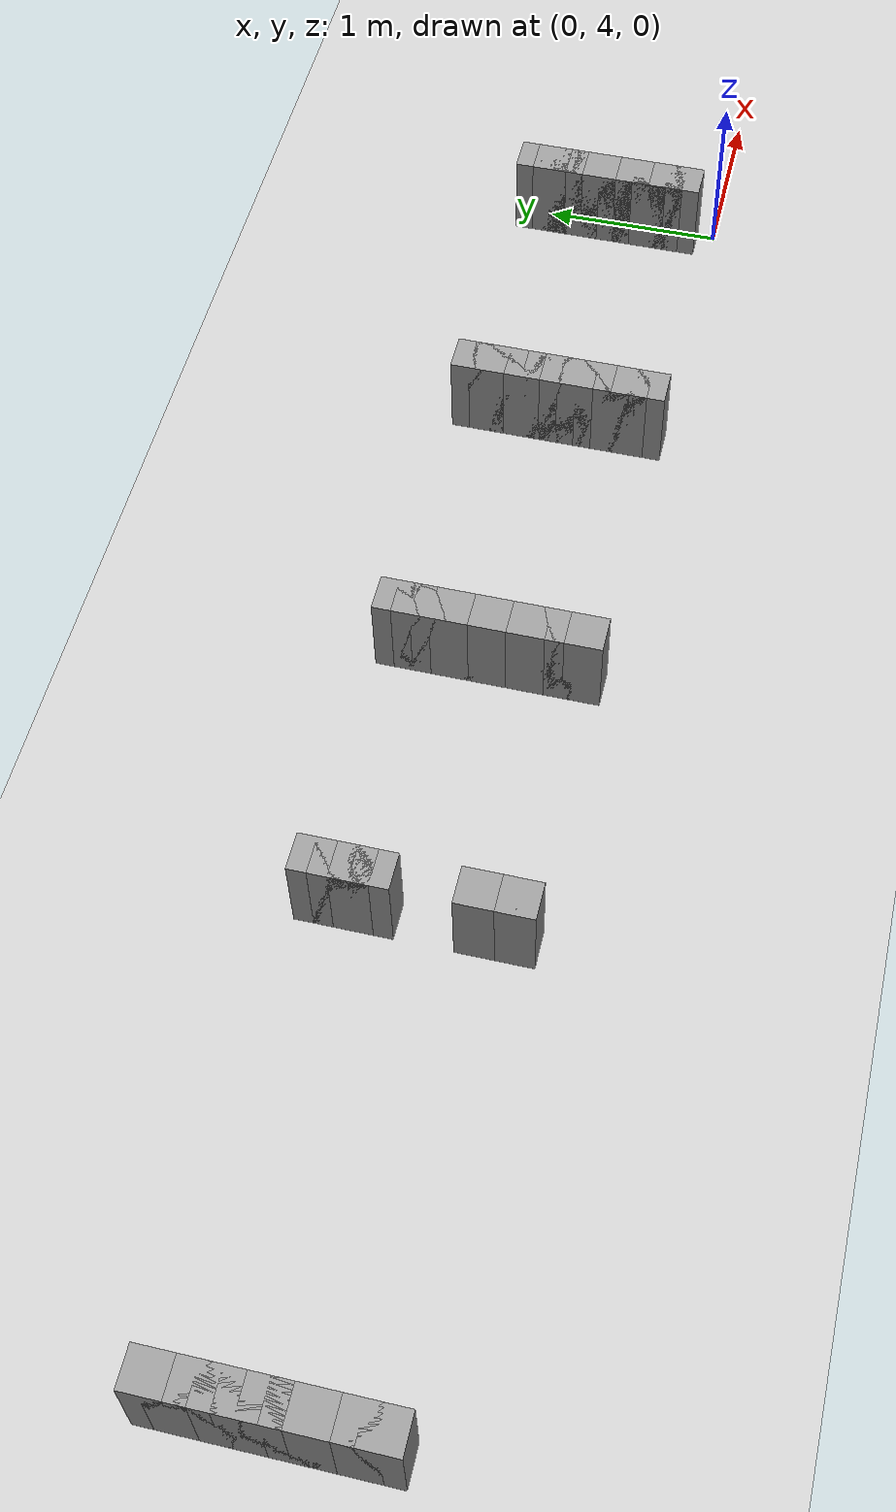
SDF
<sdf version="1.6">
 <world name="GridMap">
  <include><uri>model://sun</uri></include>
  <include><uri>model://ground_plane</uri></include>
  <model name="GridMap">
   <link name="Wall_(17.0,41.0)">
    <collision name="Wall_(17.0,41.0)_Collision">
     <geometry><box><size>0.2 0.2 0.5</size></box></geometry>
     <pose>-1.7000000000000002 4.1000000000000005 0.25 0 -0 0</pose>
    </collision>
    <inertial>
     <mass>0.5</mass>
     <pose>0 0.01 0 0 0 0</pose>
     <inertia><ixx>0.004</ixx><ixy>0.001</ixy><ixz>0</ixz><iyy>0.006</iyy><iyz>0</iyz><izz>0.007</izz></inertia>
    </inertial>
    <visual name="Wall_(17.0,41.0)_Visual">
     <geometry><box><size>0.2 0.2 0.5</size></box></geometry>
     <pose>-1.7000000000000002 4.1000000000000005 0.25 0 -0 0</pose>
     <material>
      <script><uri>file://media/materials/scripts/gazebo.material</uri><name>Gazebo/Grey</name></script>
      <ambient>1 1 1 1</ambient>
     </material>
     <meta><layer>0</layer></meta>
    </visual>
   </link>
   <link name="Wall_(34.0,41.0)">
    <collision name="Wall_(34.0,41.0)_Collision">
     <geometry><box><size>0.2 0.2 0.5</size></box></geometry>
     <pose>-3.4000000000000004 4.1000000000000005 0.25 0 -0 0</pose>
    </collision>
    <inertial>
     <mass>0.5</mass>
     <pose>0 0.01 0 0 0 0</pose>
     <inertia><ixx>0.004</ixx><ixy>0.001</ixy><ixz>0</ixz><iyy>0.006</iyy><iyz>0</iyz><izz>0.007</izz></inertia>
    </inertial>
    <visual name="Wall_(34.0,41.0)_Visual">
     <geometry><box><size>0.2 0.2 0.5</size></box></geometry>
     <pose>-3.4000000000000004 4.1000000000000005 0.25 0 -0 0</pose>
     <material>
      <script><uri>file://media/materials/scripts/gazebo.material</uri><name>Gazebo/Grey</name></script>
      <ambient>1 1 1 1</ambient>
     </material>
     <meta><layer>0</layer></meta>
    </visual>
   </link>
   <link name="Wall_(49.5,41.0)">
    <collision name="Wall_(49.5,41.0)_Collision">
     <geometry><box><size>0.2 0.2 0.5</size></box></geometry>
     <pose>-4.95 4.1000000000000005 0.25 0 -0 0</pose>
    </collision>
    <inertial>
     <mass>0.5</mass>
     <pose>0 0.01 0 0 0 0</pose>
     <inertia><ixx>0.004</ixx><ixy>0.001</ixy><ixz>0</ixz><iyy>0.006</iyy><iyz>0</iyz><izz>0.007</izz></inertia>
    </inertial>
    <visual name="Wall_(49.5,41.0)_Visual">
     <geometry><box><size>0.2 0.2 0.5</size></box></geometry>
     <pose>-4.95 4.1000000000000005 0.25 0 -0 0</pose>
     <material>
      <script><uri>file://media/materials/scripts/gazebo.material</uri><name>Gazebo/Grey</name></script>
      <ambient>1 1 1 1</ambient>
     </material>
     <meta><layer>0</layer></meta>
    </visual>
   </link>
   <link name="Wall_(74.0,41.0)">
    <collision name="Wall_(74.0,41.0)_Collision">
     <geometry><box><size>0.2 0.2 0.5</size></box></geometry>
     <pose>-7.4 4.1000000000000005 0.25 0 -0 0</pose>
    </collision>
    <inertial>
     <mass>0.5</mass>
     <pose>0 0.01 0 0 0 0</pose>
     <inertia><ixx>0.004</ixx><ixy>0.001</ixy><ixz>0</ixz><iyy>0.006</iyy><iyz>0</iyz><izz>0.007</izz></inertia>
    </inertial>
    <visual name="Wall_(74.0,41.0)_Visual">
     <geometry><box><size>0.2 0.2 0.5</size></box></geometry>
     <pose>-7.4 4.1000000000000005 0.25 0 -0 0</pose>
     <material>
      <script><uri>file://media/materials/scripts/gazebo.material</uri><name>Gazebo/Grey</name></script>
      <ambient>1 1 1 1</ambient>
     </material>
     <meta><layer>0</layer></meta>
    </visual>
   </link>
   <link name="Wall_(0.5,42.0)">
    <collision name="Wall_(0.5,42.0)_Collision">
     <geometry><box><size>0.2 0.2 0.5</size></box></geometry>
     <pose>-0.05 4.2 0.25 0 -0 0</pose>
    </collision>
    <inertial>
     <mass>0.5</mass>
     <pose>0 0.01 0 0 0 0</pose>
     <inertia><ixx>0.004</ixx><ixy>0.001</ixy><ixz>0</ixz><iyy>0.006</iyy><iyz>0</iyz><izz>0.007</izz></inertia>
    </inertial>
    <visual name="Wall_(0.5,42.0)_Visual">
     <geometry><box><size>0.2 0.2 0.5</size></box></geometry>
     <pose>-0.05 4.2 0.25 0 -0 0</pose>
     <material>
      <script><uri>file://media/materials/scripts/gazebo.material</uri><name>Gazebo/Grey</name></script>
      <ambient>1 1 1 1</ambient>
     </material>
     <meta><layer>0</layer></meta>
    </visual>
   </link>
   <link name="Wall_(17.0,42.0)">
    <collision name="Wall_(17.0,42.0)_Collision">
     <geometry><box><size>0.2 0.2 0.5</size></box></geometry>
     <pose>-1.7000000000000002 4.2 0.25 0 -0 0</pose>
    </collision>
    <inertial>
     <mass>0.5</mass>
     <pose>0 0.01 0 0 0 0</pose>
     <inertia><ixx>0.004</ixx><ixy>0.001</ixy><ixz>0</ixz><iyy>0.006</iyy><iyz>0</iyz><izz>0.007</izz></inertia>
    </inertial>
    <visual name="Wall_(17.0,42.0)_Visual">
     <geometry><box><size>0.2 0.2 0.5</size></box></geometry>
     <pose>-1.7000000000000002 4.2 0.25 0 -0 0</pose>
     <material>
      <script><uri>file://media/materials/scripts/gazebo.material</uri><name>Gazebo/Grey</name></script>
      <ambient>1 1 1 1</ambient>
     </material>
     <meta><layer>0</layer></meta>
    </visual>
   </link>
   <link name="Wall_(34.0,42.0)">
    <collision name="Wall_(34.0,42.0)_Collision">
     <geometry><box><size>0.2 0.2 0.5</size></box></geometry>
     <pose>-3.4000000000000004 4.2 0.25 0 -0 0</pose>
    </collision>
    <inertial>
     <mass>0.5</mass>
     <pose>0 0.01 0 0 0 0</pose>
     <inertia><ixx>0.004</ixx><ixy>0.001</ixy><ixz>0</ixz><iyy>0.006</iyy><iyz>0</iyz><izz>0.007</izz></inertia>
    </inertial>
    <visual name="Wall_(34.0,42.0)_Visual">
     <geometry><box><size>0.2 0.2 0.5</size></box></geometry>
     <pose>-3.4000000000000004 4.2 0.25 0 -0 0</pose>
     <material>
      <script><uri>file://media/materials/scripts/gazebo.material</uri><name>Gazebo/Grey</name></script>
      <ambient>1 1 1 1</ambient>
     </material>
     <meta><layer>0</layer></meta>
    </visual>
   </link>
   <link name="Wall_(49.5,42.0)">
    <collision name="Wall_(49.5,42.0)_Collision">
     <geometry><box><size>0.2 0.2 0.5</size></box></geometry>
     <pose>-4.95 4.2 0.25 0 -0 0</pose>
    </collision>
    <inertial>
     <mass>0.5</mass>
     <pose>0 0.01 0 0 0 0</pose>
     <inertia><ixx>0.004</ixx><ixy>0.001</ixy><ixz>0</ixz><iyy>0.006</iyy><iyz>0</iyz><izz>0.007</izz></inertia>
    </inertial>
    <visual name="Wall_(49.5,42.0)_Visual">
     <geometry><box><size>0.2 0.2 0.5</size></box></geometry>
     <pose>-4.95 4.2 0.25 0 -0 0</pose>
     <material>
      <script><uri>file://media/materials/scripts/gazebo.material</uri><name>Gazebo/Grey</name></script>
      <ambient>1 1 1 1</ambient>
     </material>
     <meta><layer>0</layer></meta>
    </visual>
   </link>
   <link name="Wall_(74.0,42.0)">
    <collision name="Wall_(74.0,42.0)_Collision">
     <geometry><box><size>0.2 0.2 0.5</size></box></geometry>
     <pose>-7.4 4.2 0.25 0 -0 0</pose>
    </collision>
    <inertial>
     <mass>0.5</mass>
     <pose>0 0.01 0 0 0 0</pose>
     <inertia><ixx>0.004</ixx><ixy>0.001</ixy><ixz>0</ixz><iyy>0.006</iyy><iyz>0</iyz><izz>0.007</izz></inertia>
    </inertial>
    <visual name="Wall_(74.0,42.0)_Visual">
     <geometry><box><size>0.2 0.2 0.5</size></box></geometry>
     <pose>-7.4 4.2 0.25 0 -0 0</pose>
     <material>
      <script><uri>file://media/materials/scripts/gazebo.material</uri><name>Gazebo/Grey</name></script>
      <ambient>1 1 1 1</ambient>
     </material>
     <meta><layer>0</layer></meta>
    </visual>
   </link>
   <link name="Wall_(0.5,43.0)">
    <collision name="Wall_(0.5,43.0)_Collision">
     <geometry><box><size>0.2 0.2 0.5</size></box></geometry>
     <pose>-0.05 4.3 0.25 0 -0 0</pose>
    </collision>
    <inertial>
     <mass>0.5</mass>
     <pose>0 0.01 0 0 0 0</pose>
     <inertia><ixx>0.004</ixx><ixy>0.001</ixy><ixz>0</ixz><iyy>0.006</iyy><iyz>0</iyz><izz>0.007</izz></inertia>
    </inertial>
    <visual name="Wall_(0.5,43.0)_Visual">
     <geometry><box><size>0.2 0.2 0.5</size></box></geometry>
     <pose>-0.05 4.3 0.25 0 -0 0</pose>
     <material>
      <script><uri>file://media/materials/scripts/gazebo.material</uri><name>Gazebo/Grey</name></script>
      <ambient>1 1 1 1</ambient>
     </material>
     <meta><layer>0</layer></meta>
    </visual>
   </link>
   <link name="Wall_(17.0,43.0)">
    <collision name="Wall_(17.0,43.0)_Collision">
     <geometry><box><size>0.2 0.2 0.5</size></box></geometry>
     <pose>-1.7000000000000002 4.3 0.25 0 -0 0</pose>
    </collision>
    <inertial>
     <mass>0.5</mass>
     <pose>0 0.01 0 0 0 0</pose>
     <inertia><ixx>0.004</ixx><ixy>0.001</ixy><ixz>0</ixz><iyy>0.006</iyy><iyz>0</iyz><izz>0.007</izz></inertia>
    </inertial>
    <visual name="Wall_(17.0,43.0)_Visual">
     <geometry><box><size>0.2 0.2 0.5</size></box></geometry>
     <pose>-1.7000000000000002 4.3 0.25 0 -0 0</pose>
     <material>
      <script><uri>file://media/materials/scripts/gazebo.material</uri><name>Gazebo/Grey</name></script>
      <ambient>1 1 1 1</ambient>
     </material>
     <meta><layer>0</layer></meta>
    </visual>
   </link>
   <link name="Wall_(34.0,43.0)">
    <collision name="Wall_(34.0,43.0)_Collision">
     <geometry><box><size>0.2 0.2 0.5</size></box></geometry>
     <pose>-3.4000000000000004 4.3 0.25 0 -0 0</pose>
    </collision>
    <inertial>
     <mass>0.5</mass>
     <pose>0 0.01 0 0 0 0</pose>
     <inertia><ixx>0.004</ixx><ixy>0.001</ixy><ixz>0</ixz><iyy>0.006</iyy><iyz>0</iyz><izz>0.007</izz></inertia>
    </inertial>
    <visual name="Wall_(34.0,43.0)_Visual">
     <geometry><box><size>0.2 0.2 0.5</size></box></geometry>
     <pose>-3.4000000000000004 4.3 0.25 0 -0 0</pose>
     <material>
      <script><uri>file://media/materials/scripts/gazebo.material</uri><name>Gazebo/Grey</name></script>
      <ambient>1 1 1 1</ambient>
     </material>
     <meta><layer>0</layer></meta>
    </visual>
   </link>
   <link name="Wall_(49.5,43.0)">
    <collision name="Wall_(49.5,43.0)_Collision">
     <geometry><box><size>0.2 0.2 0.5</size></box></geometry>
     <pose>-4.95 4.3 0.25 0 -0 0</pose>
    </collision>
    <inertial>
     <mass>0.5</mass>
     <pose>0 0.01 0 0 0 0</pose>
     <inertia><ixx>0.004</ixx><ixy>0.001</ixy><ixz>0</ixz><iyy>0.006</iyy><iyz>0</iyz><izz>0.007</izz></inertia>
    </inertial>
    <visual name="Wall_(49.5,43.0)_Visual">
     <geometry><box><size>0.2 0.2 0.5</size></box></geometry>
     <pose>-4.95 4.3 0.25 0 -0 0</pose>
     <material>
      <script><uri>file://media/materials/scripts/gazebo.material</uri><name>Gazebo/Grey</name></script>
      <ambient>1 1 1 1</ambient>
     </material>
     <meta><layer>0</layer></meta>
    </visual>
   </link>
   <link name="Wall_(74.0,43.0)">
    <collision name="Wall_(74.0,43.0)_Collision">
     <geometry><box><size>0.2 0.2 0.5</size></box></geometry>
     <pose>-7.4 4.3 0.25 0 -0 0</pose>
    </collision>
    <inertial>
     <mass>0.5</mass>
     <pose>0 0.01 0 0 0 0</pose>
     <inertia><ixx>0.004</ixx><ixy>0.001</ixy><ixz>0</ixz><iyy>0.006</iyy><iyz>0</iyz><izz>0.007</izz></inertia>
    </inertial>
    <visual name="Wall_(74.0,43.0)_Visual">
     <geometry><box><size>0.2 0.2 0.5</size></box></geometry>
     <pose>-7.4 4.3 0.25 0 -0 0</pose>
     <material>
      <script><uri>file://media/materials/scripts/gazebo.material</uri><name>Gazebo/Grey</name></script>
      <ambient>1 1 1 1</ambient>
     </material>
     <meta><layer>0</layer></meta>
    </visual>
   </link>
   <link name="Wall_(0.5,44.0)">
    <collision name="Wall_(0.5,44.0)_Collision">
     <geometry><box><size>0.2 0.2 0.5</size></box></geometry>
     <pose>-0.05 4.4 0.25 0 -0 0</pose>
    </collision>
    <inertial>
     <mass>0.5</mass>
     <pose>0 0.01 0 0 0 0</pose>
     <inertia><ixx>0.004</ixx><ixy>0.001</ixy><ixz>0</ixz><iyy>0.006</iyy><iyz>0</iyz><izz>0.007</izz></inertia>
    </inertial>
    <visual name="Wall_(0.5,44.0)_Visual">
     <geometry><box><size>0.2 0.2 0.5</size></box></geometry>
     <pose>-0.05 4.4 0.25 0 -0 0</pose>
     <material>
      <script><uri>file://media/materials/scripts/gazebo.material</uri><name>Gazebo/Grey</name></script>
      <ambient>1 1 1 1</ambient>
     </material>
     <meta><layer>0</layer></meta>
    </visual>
   </link>
   <link name="Wall_(17.0,44.0)">
    <collision name="Wall_(17.0,44.0)_Collision">
     <geometry><box><size>0.2 0.2 0.5</size></box></geometry>
     <pose>-1.7000000000000002 4.4 0.25 0 -0 0</pose>
    </collision>
    <inertial>
     <mass>0.5</mass>
     <pose>0 0.01 0 0 0 0</pose>
     <inertia><ixx>0.004</ixx><ixy>0.001</ixy><ixz>0</ixz><iyy>0.006</iyy><iyz>0</iyz><izz>0.007</izz></inertia>
    </inertial>
    <visual name="Wall_(17.0,44.0)_Visual">
     <geometry><box><size>0.2 0.2 0.5</size></box></geometry>
     <pose>-1.7000000000000002 4.4 0.25 0 -0 0</pose>
     <material>
      <script><uri>file://media/materials/scripts/gazebo.material</uri><name>Gazebo/Grey</name></script>
      <ambient>1 1 1 1</ambient>
     </material>
     <meta><layer>0</layer></meta>
    </visual>
   </link>
   <link name="Wall_(34.0,44.0)">
    <collision name="Wall_(34.0,44.0)_Collision">
     <geometry><box><size>0.2 0.2 0.5</size></box></geometry>
     <pose>-3.4000000000000004 4.4 0.25 0 -0 0</pose>
    </collision>
    <inertial>
     <mass>0.5</mass>
     <pose>0 0.01 0 0 0 0</pose>
     <inertia><ixx>0.004</ixx><ixy>0.001</ixy><ixz>0</ixz><iyy>0.006</iyy><iyz>0</iyz><izz>0.007</izz></inertia>
    </inertial>
    <visual name="Wall_(34.0,44.0)_Visual">
     <geometry><box><size>0.2 0.2 0.5</size></box></geometry>
     <pose>-3.4000000000000004 4.4 0.25 0 -0 0</pose>
     <material>
      <script><uri>file://media/materials/scripts/gazebo.material</uri><name>Gazebo/Grey</name></script>
      <ambient>1 1 1 1</ambient>
     </material>
     <meta><layer>0</layer></meta>
    </visual>
   </link>
   <link name="Wall_(74.0,44.0)">
    <collision name="Wall_(74.0,44.0)_Collision">
     <geometry><box><size>0.2 0.2 0.5</size></box></geometry>
     <pose>-7.4 4.4 0.25 0 -0 0</pose>
    </collision>
    <inertial>
     <mass>0.5</mass>
     <pose>0 0.01 0 0 0 0</pose>
     <inertia><ixx>0.004</ixx><ixy>0.001</ixy><ixz>0</ixz><iyy>0.006</iyy><iyz>0</iyz><izz>0.007</izz></inertia>
    </inertial>
    <visual name="Wall_(74.0,44.0)_Visual">
     <geometry><box><size>0.2 0.2 0.5</size></box></geometry>
     <pose>-7.4 4.4 0.25 0 -0 0</pose>
     <material>
      <script><uri>file://media/materials/scripts/gazebo.material</uri><name>Gazebo/Grey</name></script>
      <ambient>1 1 1 1</ambient>
     </material>
     <meta><layer>0</layer></meta>
    </visual>
   </link>
   <link name="Wall_(0.5,45.0)">
    <collision name="Wall_(0.5,45.0)_Collision">
     <geometry><box><size>0.2 0.2 0.5</size></box></geometry>
     <pose>-0.05 4.5 0.25 0 -0 0</pose>
    </collision>
    <inertial>
     <mass>0.5</mass>
     <pose>0 0.01 0 0 0 0</pose>
     <inertia><ixx>0.004</ixx><ixy>0.001</ixy><ixz>0</ixz><iyy>0.006</iyy><iyz>0</iyz><izz>0.007</izz></inertia>
    </inertial>
    <visual name="Wall_(0.5,45.0)_Visual">
     <geometry><box><size>0.2 0.2 0.5</size></box></geometry>
     <pose>-0.05 4.5 0.25 0 -0 0</pose>
     <material>
      <script><uri>file://media/materials/scripts/gazebo.material</uri><name>Gazebo/Grey</name></script>
      <ambient>1 1 1 1</ambient>
     </material>
     <meta><layer>0</layer></meta>
    </visual>
   </link>
   <link name="Wall_(17.0,45.0)">
    <collision name="Wall_(17.0,45.0)_Collision">
     <geometry><box><size>0.2 0.2 0.5</size></box></geometry>
     <pose>-1.7000000000000002 4.5 0.25 0 -0 0</pose>
    </collision>
    <inertial>
     <mass>0.5</mass>
     <pose>0 0.01 0 0 0 0</pose>
     <inertia><ixx>0.004</ixx><ixy>0.001</ixy><ixz>0</ixz><iyy>0.006</iyy><iyz>0</iyz><izz>0.007</izz></inertia>
    </inertial>
    <visual name="Wall_(17.0,45.0)_Visual">
     <geometry><box><size>0.2 0.2 0.5</size></box></geometry>
     <pose>-1.7000000000000002 4.5 0.25 0 -0 0</pose>
     <material>
      <script><uri>file://media/materials/scripts/gazebo.material</uri><name>Gazebo/Grey</name></script>
      <ambient>1 1 1 1</ambient>
     </material>
     <meta><layer>0</layer></meta>
    </visual>
   </link>
   <link name="Wall_(34.0,45.0)">
    <collision name="Wall_(34.0,45.0)_Collision">
     <geometry><box><size>0.2 0.2 0.5</size></box></geometry>
     <pose>-3.4000000000000004 4.5 0.25 0 -0 0</pose>
    </collision>
    <inertial>
     <mass>0.5</mass>
     <pose>0 0.01 0 0 0 0</pose>
     <inertia><ixx>0.004</ixx><ixy>0.001</ixy><ixz>0</ixz><iyy>0.006</iyy><iyz>0</iyz><izz>0.007</izz></inertia>
    </inertial>
    <visual name="Wall_(34.0,45.0)_Visual">
     <geometry><box><size>0.2 0.2 0.5</size></box></geometry>
     <pose>-3.4000000000000004 4.5 0.25 0 -0 0</pose>
     <material>
      <script><uri>file://media/materials/scripts/gazebo.material</uri><name>Gazebo/Grey</name></script>
      <ambient>1 1 1 1</ambient>
     </material>
     <meta><layer>0</layer></meta>
    </visual>
   </link>
   <link name="Wall_(74.0,45.0)">
    <collision name="Wall_(74.0,45.0)_Collision">
     <geometry><box><size>0.2 0.2 0.5</size></box></geometry>
     <pose>-7.4 4.5 0.25 0 -0 0</pose>
    </collision>
    <inertial>
     <mass>0.5</mass>
     <pose>0 0.01 0 0 0 0</pose>
     <inertia><ixx>0.004</ixx><ixy>0.001</ixy><ixz>0</ixz><iyy>0.006</iyy><iyz>0</iyz><izz>0.007</izz></inertia>
    </inertial>
    <visual name="Wall_(74.0,45.0)_Visual">
     <geometry><box><size>0.2 0.2 0.5</size></box></geometry>
     <pose>-7.4 4.5 0.25 0 -0 0</pose>
     <material>
      <script><uri>file://media/materials/scripts/gazebo.material</uri><name>Gazebo/Grey</name></script>
      <ambient>1 1 1 1</ambient>
     </material>
     <meta><layer>0</layer></meta>
    </visual>
   </link>
   <link name="Wall_(0.5,46.0)">
    <collision name="Wall_(0.5,46.0)_Collision">
     <geometry><box><size>0.2 0.2 0.5</size></box></geometry>
     <pose>-0.05 4.6000000000000005 0.25 0 -0 0</pose>
    </collision>
    <inertial>
     <mass>0.5</mass>
     <pose>0 0.01 0 0 0 0</pose>
     <inertia><ixx>0.004</ixx><ixy>0.001</ixy><ixz>0</ixz><iyy>0.006</iyy><iyz>0</iyz><izz>0.007</izz></inertia>
    </inertial>
    <visual name="Wall_(0.5,46.0)_Visual">
     <geometry><box><size>0.2 0.2 0.5</size></box></geometry>
     <pose>-0.05 4.6000000000000005 0.25 0 -0 0</pose>
     <material>
      <script><uri>file://media/materials/scripts/gazebo.material</uri><name>Gazebo/Grey</name></script>
      <ambient>1 1 1 1</ambient>
     </material>
     <meta><layer>0</layer></meta>
    </visual>
   </link>
   <link name="Wall_(17.0,46.0)">
    <collision name="Wall_(17.0,46.0)_Collision">
     <geometry><box><size>0.2 0.2 0.5</size></box></geometry>
     <pose>-1.7000000000000002 4.6000000000000005 0.25 0 -0 0</pose>
    </collision>
    <inertial>
     <mass>0.5</mass>
     <pose>0 0.01 0 0 0 0</pose>
     <inertia><ixx>0.004</ixx><ixy>0.001</ixy><ixz>0</ixz><iyy>0.006</iyy><iyz>0</iyz><izz>0.007</izz></inertia>
    </inertial>
    <visual name="Wall_(17.0,46.0)_Visual">
     <geometry><box><size>0.2 0.2 0.5</size></box></geometry>
     <pose>-1.7000000000000002 4.6000000000000005 0.25 0 -0 0</pose>
     <material>
      <script><uri>file://media/materials/scripts/gazebo.material</uri><name>Gazebo/Grey</name></script>
      <ambient>1 1 1 1</ambient>
     </material>
     <meta><layer>0</layer></meta>
    </visual>
   </link>
   <link name="Wall_(34.0,46.0)">
    <collision name="Wall_(34.0,46.0)_Collision">
     <geometry><box><size>0.2 0.2 0.5</size></box></geometry>
     <pose>-3.4000000000000004 4.6000000000000005 0.25 0 -0 0</pose>
    </collision>
    <inertial>
     <mass>0.5</mass>
     <pose>0 0.01 0 0 0 0</pose>
     <inertia><ixx>0.004</ixx><ixy>0.001</ixy><ixz>0</ixz><iyy>0.006</iyy><iyz>0</iyz><izz>0.007</izz></inertia>
    </inertial>
    <visual name="Wall_(34.0,46.0)_Visual">
     <geometry><box><size>0.2 0.2 0.5</size></box></geometry>
     <pose>-3.4000000000000004 4.6000000000000005 0.25 0 -0 0</pose>
     <material>
      <script><uri>file://media/materials/scripts/gazebo.material</uri><name>Gazebo/Grey</name></script>
      <ambient>1 1 1 1</ambient>
     </material>
     <meta><layer>0</layer></meta>
    </visual>
   </link>
   <link name="Wall_(74.0,46.0)">
    <collision name="Wall_(74.0,46.0)_Collision">
     <geometry><box><size>0.2 0.2 0.5</size></box></geometry>
     <pose>-7.4 4.6000000000000005 0.25 0 -0 0</pose>
    </collision>
    <inertial>
     <mass>0.5</mass>
     <pose>0 0.01 0 0 0 0</pose>
     <inertia><ixx>0.004</ixx><ixy>0.001</ixy><ixz>0</ixz><iyy>0.006</iyy><iyz>0</iyz><izz>0.007</izz></inertia>
    </inertial>
    <visual name="Wall_(74.0,46.0)_Visual">
     <geometry><box><size>0.2 0.2 0.5</size></box></geometry>
     <pose>-7.4 4.6000000000000005 0.25 0 -0 0</pose>
     <material>
      <script><uri>file://media/materials/scripts/gazebo.material</uri><name>Gazebo/Grey</name></script>
      <ambient>1 1 1 1</ambient>
     </material>
     <meta><layer>0</layer></meta>
    </visual>
   </link>
   <link name="Wall_(0.5,47.0)">
    <collision name="Wall_(0.5,47.0)_Collision">
     <geometry><box><size>0.2 0.2 0.5</size></box></geometry>
     <pose>-0.05 4.7 0.25 0 -0 0</pose>
    </collision>
    <inertial>
     <mass>0.5</mass>
     <pose>0 0.01 0 0 0 0</pose>
     <inertia><ixx>0.004</ixx><ixy>0.001</ixy><ixz>0</ixz><iyy>0.006</iyy><iyz>0</iyz><izz>0.007</izz></inertia>
    </inertial>
    <visual name="Wall_(0.5,47.0)_Visual">
     <geometry><box><size>0.2 0.2 0.5</size></box></geometry>
     <pose>-0.05 4.7 0.25 0 -0 0</pose>
     <material>
      <script><uri>file://media/materials/scripts/gazebo.material</uri><name>Gazebo/Grey</name></script>
      <ambient>1 1 1 1</ambient>
     </material>
     <meta><layer>0</layer></meta>
    </visual>
   </link>
   <link name="Wall_(17.0,47.0)">
    <collision name="Wall_(17.0,47.0)_Collision">
     <geometry><box><size>0.2 0.2 0.5</size></box></geometry>
     <pose>-1.7000000000000002 4.7 0.25 0 -0 0</pose>
    </collision>
    <inertial>
     <mass>0.5</mass>
     <pose>0 0.01 0 0 0 0</pose>
     <inertia><ixx>0.004</ixx><ixy>0.001</ixy><ixz>0</ixz><iyy>0.006</iyy><iyz>0</iyz><izz>0.007</izz></inertia>
    </inertial>
    <visual name="Wall_(17.0,47.0)_Visual">
     <geometry><box><size>0.2 0.2 0.5</size></box></geometry>
     <pose>-1.7000000000000002 4.7 0.25 0 -0 0</pose>
     <material>
      <script><uri>file://media/materials/scripts/gazebo.material</uri><name>Gazebo/Grey</name></script>
      <ambient>1 1 1 1</ambient>
     </material>
     <meta><layer>0</layer></meta>
    </visual>
   </link>
   <link name="Wall_(34.0,47.0)">
    <collision name="Wall_(34.0,47.0)_Collision">
     <geometry><box><size>0.2 0.2 0.5</size></box></geometry>
     <pose>-3.4000000000000004 4.7 0.25 0 -0 0</pose>
    </collision>
    <inertial>
     <mass>0.5</mass>
     <pose>0 0.01 0 0 0 0</pose>
     <inertia><ixx>0.004</ixx><ixy>0.001</ixy><ixz>0</ixz><iyy>0.006</iyy><iyz>0</iyz><izz>0.007</izz></inertia>
    </inertial>
    <visual name="Wall_(34.0,47.0)_Visual">
     <geometry><box><size>0.2 0.2 0.5</size></box></geometry>
     <pose>-3.4000000000000004 4.7 0.25 0 -0 0</pose>
     <material>
      <script><uri>file://media/materials/scripts/gazebo.material</uri><name>Gazebo/Grey</name></script>
      <ambient>1 1 1 1</ambient>
     </material>
     <meta><layer>0</layer></meta>
    </visual>
   </link>
   <link name="Wall_(74.0,47.0)">
    <collision name="Wall_(74.0,47.0)_Collision">
     <geometry><box><size>0.2 0.2 0.5</size></box></geometry>
     <pose>-7.4 4.7 0.25 0 -0 0</pose>
    </collision>
    <inertial>
     <mass>0.5</mass>
     <pose>0 0.01 0 0 0 0</pose>
     <inertia><ixx>0.004</ixx><ixy>0.001</ixy><ixz>0</ixz><iyy>0.006</iyy><iyz>0</iyz><izz>0.007</izz></inertia>
    </inertial>
    <visual name="Wall_(74.0,47.0)_Visual">
     <geometry><box><size>0.2 0.2 0.5</size></box></geometry>
     <pose>-7.4 4.7 0.25 0 -0 0</pose>
     <material>
      <script><uri>file://media/materials/scripts/gazebo.material</uri><name>Gazebo/Grey</name></script>
      <ambient>1 1 1 1</ambient>
     </material>
     <meta><layer>0</layer></meta>
    </visual>
   </link>
   <link name="Wall_(0.5,48.0)">
    <collision name="Wall_(0.5,48.0)_Collision">
     <geometry><box><size>0.2 0.2 0.5</size></box></geometry>
     <pose>-0.05 4.800000000000001 0.25 0 -0 0</pose>
    </collision>
    <inertial>
     <mass>0.5</mass>
     <pose>0 0.01 0 0 0 0</pose>
     <inertia><ixx>0.004</ixx><ixy>0.001</ixy><ixz>0</ixz><iyy>0.006</iyy><iyz>0</iyz><izz>0.007</izz></inertia>
    </inertial>
    <visual name="Wall_(0.5,48.0)_Visual">
     <geometry><box><size>0.2 0.2 0.5</size></box></geometry>
     <pose>-0.05 4.800000000000001 0.25 0 -0 0</pose>
     <material>
      <script><uri>file://media/materials/scripts/gazebo.material</uri><name>Gazebo/Grey</name></script>
      <ambient>1 1 1 1</ambient>
     </material>
     <meta><layer>0</layer></meta>
    </visual>
   </link>
   <link name="Wall_(17.0,48.0)">
    <collision name="Wall_(17.0,48.0)_Collision">
     <geometry><box><size>0.2 0.2 0.5</size></box></geometry>
     <pose>-1.7000000000000002 4.800000000000001 0.25 0 -0 0</pose>
    </collision>
    <inertial>
     <mass>0.5</mass>
     <pose>0 0.01 0 0 0 0</pose>
     <inertia><ixx>0.004</ixx><ixy>0.001</ixy><ixz>0</ixz><iyy>0.006</iyy><iyz>0</iyz><izz>0.007</izz></inertia>
    </inertial>
    <visual name="Wall_(17.0,48.0)_Visual">
     <geometry><box><size>0.2 0.2 0.5</size></box></geometry>
     <pose>-1.7000000000000002 4.800000000000001 0.25 0 -0 0</pose>
     <material>
      <script><uri>file://media/materials/scripts/gazebo.material</uri><name>Gazebo/Grey</name></script>
      <ambient>1 1 1 1</ambient>
     </material>
     <meta><layer>0</layer></meta>
    </visual>
   </link>
   <link name="Wall_(34.0,48.0)">
    <collision name="Wall_(34.0,48.0)_Collision">
     <geometry><box><size>0.2 0.2 0.5</size></box></geometry>
     <pose>-3.4000000000000004 4.800000000000001 0.25 0 -0 0</pose>
    </collision>
    <inertial>
     <mass>0.5</mass>
     <pose>0 0.01 0 0 0 0</pose>
     <inertia><ixx>0.004</ixx><ixy>0.001</ixy><ixz>0</ixz><iyy>0.006</iyy><iyz>0</iyz><izz>0.007</izz></inertia>
    </inertial>
    <visual name="Wall_(34.0,48.0)_Visual">
     <geometry><box><size>0.2 0.2 0.5</size></box></geometry>
     <pose>-3.4000000000000004 4.800000000000001 0.25 0 -0 0</pose>
     <material>
      <script><uri>file://media/materials/scripts/gazebo.material</uri><name>Gazebo/Grey</name></script>
      <ambient>1 1 1 1</ambient>
     </material>
     <meta><layer>0</layer></meta>
    </visual>
   </link>
   <link name="Wall_(49.5,48.0)">
    <collision name="Wall_(49.5,48.0)_Collision">
     <geometry><box><size>0.2 0.2 0.5</size></box></geometry>
     <pose>-4.95 4.800000000000001 0.25 0 -0 0</pose>
    </collision>
    <inertial>
     <mass>0.5</mass>
     <pose>0 0.01 0 0 0 0</pose>
     <inertia><ixx>0.004</ixx><ixy>0.001</ixy><ixz>0</ixz><iyy>0.006</iyy><iyz>0</iyz><izz>0.007</izz></inertia>
    </inertial>
    <visual name="Wall_(49.5,48.0)_Visual">
     <geometry><box><size>0.2 0.2 0.5</size></box></geometry>
     <pose>-4.95 4.800000000000001 0.25 0 -0 0</pose>
     <material>
      <script><uri>file://media/materials/scripts/gazebo.material</uri><name>Gazebo/Grey</name></script>
      <ambient>1 1 1 1</ambient>
     </material>
     <meta><layer>0</layer></meta>
    </visual>
   </link>
   <link name="Wall_(74.0,48.0)">
    <collision name="Wall_(74.0,48.0)_Collision">
     <geometry><box><size>0.2 0.2 0.5</size></box></geometry>
     <pose>-7.4 4.800000000000001 0.25 0 -0 0</pose>
    </collision>
    <inertial>
     <mass>0.5</mass>
     <pose>0 0.01 0 0 0 0</pose>
     <inertia><ixx>0.004</ixx><ixy>0.001</ixy><ixz>0</ixz><iyy>0.006</iyy><iyz>0</iyz><izz>0.007</izz></inertia>
    </inertial>
    <visual name="Wall_(74.0,48.0)_Visual">
     <geometry><box><size>0.2 0.2 0.5</size></box></geometry>
     <pose>-7.4 4.800000000000001 0.25 0 -0 0</pose>
     <material>
      <script><uri>file://media/materials/scripts/gazebo.material</uri><name>Gazebo/Grey</name></script>
      <ambient>1 1 1 1</ambient>
     </material>
     <meta><layer>0</layer></meta>
    </visual>
   </link>
   <link name="Wall_(0.5,49.0)">
    <collision name="Wall_(0.5,49.0)_Collision">
     <geometry><box><size>0.2 0.2 0.5</size></box></geometry>
     <pose>-0.05 4.9 0.25 0 -0 0</pose>
    </collision>
    <inertial>
     <mass>0.5</mass>
     <pose>0 0.01 0 0 0 0</pose>
     <inertia><ixx>0.004</ixx><ixy>0.001</ixy><ixz>0</ixz><iyy>0.006</iyy><iyz>0</iyz><izz>0.007</izz></inertia>
    </inertial>
    <visual name="Wall_(0.5,49.0)_Visual">
     <geometry><box><size>0.2 0.2 0.5</size></box></geometry>
     <pose>-0.05 4.9 0.25 0 -0 0</pose>
     <material>
      <script><uri>file://media/materials/scripts/gazebo.material</uri><name>Gazebo/Grey</name></script>
      <ambient>1 1 1 1</ambient>
     </material>
     <meta><layer>0</layer></meta>
    </visual>
   </link>
   <link name="Wall_(17.0,49.0)">
    <collision name="Wall_(17.0,49.0)_Collision">
     <geometry><box><size>0.2 0.2 0.5</size></box></geometry>
     <pose>-1.7000000000000002 4.9 0.25 0 -0 0</pose>
    </collision>
    <inertial>
     <mass>0.5</mass>
     <pose>0 0.01 0 0 0 0</pose>
     <inertia><ixx>0.004</ixx><ixy>0.001</ixy><ixz>0</ixz><iyy>0.006</iyy><iyz>0</iyz><izz>0.007</izz></inertia>
    </inertial>
    <visual name="Wall_(17.0,49.0)_Visual">
     <geometry><box><size>0.2 0.2 0.5</size></box></geometry>
     <pose>-1.7000000000000002 4.9 0.25 0 -0 0</pose>
     <material>
      <script><uri>file://media/materials/scripts/gazebo.material</uri><name>Gazebo/Grey</name></script>
      <ambient>1 1 1 1</ambient>
     </material>
     <meta><layer>0</layer></meta>
    </visual>
   </link>
   <link name="Wall_(34.0,49.0)">
    <collision name="Wall_(34.0,49.0)_Collision">
     <geometry><box><size>0.2 0.2 0.5</size></box></geometry>
     <pose>-3.4000000000000004 4.9 0.25 0 -0 0</pose>
    </collision>
    <inertial>
     <mass>0.5</mass>
     <pose>0 0.01 0 0 0 0</pose>
     <inertia><ixx>0.004</ixx><ixy>0.001</ixy><ixz>0</ixz><iyy>0.006</iyy><iyz>0</iyz><izz>0.007</izz></inertia>
    </inertial>
    <visual name="Wall_(34.0,49.0)_Visual">
     <geometry><box><size>0.2 0.2 0.5</size></box></geometry>
     <pose>-3.4000000000000004 4.9 0.25 0 -0 0</pose>
     <material>
      <script><uri>file://media/materials/scripts/gazebo.material</uri><name>Gazebo/Grey</name></script>
      <ambient>1 1 1 1</ambient>
     </material>
     <meta><layer>0</layer></meta>
    </visual>
   </link>
   <link name="Wall_(49.5,49.0)">
    <collision name="Wall_(49.5,49.0)_Collision">
     <geometry><box><size>0.2 0.2 0.5</size></box></geometry>
     <pose>-4.95 4.9 0.25 0 -0 0</pose>
    </collision>
    <inertial>
     <mass>0.5</mass>
     <pose>0 0.01 0 0 0 0</pose>
     <inertia><ixx>0.004</ixx><ixy>0.001</ixy><ixz>0</ixz><iyy>0.006</iyy><iyz>0</iyz><izz>0.007</izz></inertia>
    </inertial>
    <visual name="Wall_(49.5,49.0)_Visual">
     <geometry><box><size>0.2 0.2 0.5</size></box></geometry>
     <pose>-4.95 4.9 0.25 0 -0 0</pose>
     <material>
      <script><uri>file://media/materials/scripts/gazebo.material</uri><name>Gazebo/Grey</name></script>
      <ambient>1 1 1 1</ambient>
     </material>
     <meta><layer>0</layer></meta>
    </visual>
   </link>
   <link name="Wall_(74.0,49.0)">
    <collision name="Wall_(74.0,49.0)_Collision">
     <geometry><box><size>0.2 0.2 0.5</size></box></geometry>
     <pose>-7.4 4.9 0.25 0 -0 0</pose>
    </collision>
    <inertial>
     <mass>0.5</mass>
     <pose>0 0.01 0 0 0 0</pose>
     <inertia><ixx>0.004</ixx><ixy>0.001</ixy><ixz>0</ixz><iyy>0.006</iyy><iyz>0</iyz><izz>0.007</izz></inertia>
    </inertial>
    <visual name="Wall_(74.0,49.0)_Visual">
     <geometry><box><size>0.2 0.2 0.5</size></box></geometry>
     <pose>-7.4 4.9 0.25 0 -0 0</pose>
     <material>
      <script><uri>file://media/materials/scripts/gazebo.material</uri><name>Gazebo/Grey</name></script>
      <ambient>1 1 1 1</ambient>
     </material>
     <meta><layer>0</layer></meta>
    </visual>
   </link>
   <link name="Wall_(0.5,50.0)">
    <collision name="Wall_(0.5,50.0)_Collision">
     <geometry><box><size>0.2 0.2 0.5</size></box></geometry>
     <pose>-0.05 5.0 0.25 0 -0 0</pose>
    </collision>
    <inertial>
     <mass>0.5</mass>
     <pose>0 0.01 0 0 0 0</pose>
     <inertia><ixx>0.004</ixx><ixy>0.001</ixy><ixz>0</ixz><iyy>0.006</iyy><iyz>0</iyz><izz>0.007</izz></inertia>
    </inertial>
    <visual name="Wall_(0.5,50.0)_Visual">
     <geometry><box><size>0.2 0.2 0.5</size></box></geometry>
     <pose>-0.05 5.0 0.25 0 -0 0</pose>
     <material>
      <script><uri>file://media/materials/scripts/gazebo.material</uri><name>Gazebo/Grey</name></script>
      <ambient>1 1 1 1</ambient>
     </material>
     <meta><layer>0</layer></meta>
    </visual>
   </link>
   <link name="Wall_(17.0,50.0)">
    <collision name="Wall_(17.0,50.0)_Collision">
     <geometry><box><size>0.2 0.2 0.5</size></box></geometry>
     <pose>-1.7000000000000002 5.0 0.25 0 -0 0</pose>
    </collision>
    <inertial>
     <mass>0.5</mass>
     <pose>0 0.01 0 0 0 0</pose>
     <inertia><ixx>0.004</ixx><ixy>0.001</ixy><ixz>0</ixz><iyy>0.006</iyy><iyz>0</iyz><izz>0.007</izz></inertia>
    </inertial>
    <visual name="Wall_(17.0,50.0)_Visual">
     <geometry><box><size>0.2 0.2 0.5</size></box></geometry>
     <pose>-1.7000000000000002 5.0 0.25 0 -0 0</pose>
     <material>
      <script><uri>file://media/materials/scripts/gazebo.material</uri><name>Gazebo/Grey</name></script>
      <ambient>1 1 1 1</ambient>
     </material>
     <meta><layer>0</layer></meta>
    </visual>
   </link>
   <link name="Wall_(34.0,50.0)">
    <collision name="Wall_(34.0,50.0)_Collision">
     <geometry><box><size>0.2 0.2 0.5</size></box></geometry>
     <pose>-3.4000000000000004 5.0 0.25 0 -0 0</pose>
    </collision>
    <inertial>
     <mass>0.5</mass>
     <pose>0 0.01 0 0 0 0</pose>
     <inertia><ixx>0.004</ixx><ixy>0.001</ixy><ixz>0</ixz><iyy>0.006</iyy><iyz>0</iyz><izz>0.007</izz></inertia>
    </inertial>
    <visual name="Wall_(34.0,50.0)_Visual">
     <geometry><box><size>0.2 0.2 0.5</size></box></geometry>
     <pose>-3.4000000000000004 5.0 0.25 0 -0 0</pose>
     <material>
      <script><uri>file://media/materials/scripts/gazebo.material</uri><name>Gazebo/Grey</name></script>
      <ambient>1 1 1 1</ambient>
     </material>
     <meta><layer>0</layer></meta>
    </visual>
   </link>
   <link name="Wall_(49.5,50.0)">
    <collision name="Wall_(49.5,50.0)_Collision">
     <geometry><box><size>0.2 0.2 0.5</size></box></geometry>
     <pose>-4.95 5.0 0.25 0 -0 0</pose>
    </collision>
    <inertial>
     <mass>0.5</mass>
     <pose>0 0.01 0 0 0 0</pose>
     <inertia><ixx>0.004</ixx><ixy>0.001</ixy><ixz>0</ixz><iyy>0.006</iyy><iyz>0</iyz><izz>0.007</izz></inertia>
    </inertial>
    <visual name="Wall_(49.5,50.0)_Visual">
     <geometry><box><size>0.2 0.2 0.5</size></box></geometry>
     <pose>-4.95 5.0 0.25 0 -0 0</pose>
     <material>
      <script><uri>file://media/materials/scripts/gazebo.material</uri><name>Gazebo/Grey</name></script>
      <ambient>1 1 1 1</ambient>
     </material>
     <meta><layer>0</layer></meta>
    </visual>
   </link>
   <link name="Wall_(74.0,50.0)">
    <collision name="Wall_(74.0,50.0)_Collision">
     <geometry><box><size>0.2 0.2 0.5</size></box></geometry>
     <pose>-7.4 5.0 0.25 0 -0 0</pose>
    </collision>
    <inertial>
     <mass>0.5</mass>
     <pose>0 0.01 0 0 0 0</pose>
     <inertia><ixx>0.004</ixx><ixy>0.001</ixy><ixz>0</ixz><iyy>0.006</iyy><iyz>0</iyz><izz>0.007</izz></inertia>
    </inertial>
    <visual name="Wall_(74.0,50.0)_Visual">
     <geometry><box><size>0.2 0.2 0.5</size></box></geometry>
     <pose>-7.4 5.0 0.25 0 -0 0</pose>
     <material>
      <script><uri>file://media/materials/scripts/gazebo.material</uri><name>Gazebo/Grey</name></script>
      <ambient>1 1 1 1</ambient>
     </material>
     <meta><layer>0</layer></meta>
    </visual>
   </link>
   <link name="Wall_(0.5,51.0)">
    <collision name="Wall_(0.5,51.0)_Collision">
     <geometry><box><size>0.2 0.2 0.5</size></box></geometry>
     <pose>-0.05 5.1000000000000005 0.25 0 -0 0</pose>
    </collision>
    <inertial>
     <mass>0.5</mass>
     <pose>0 0.01 0 0 0 0</pose>
     <inertia><ixx>0.004</ixx><ixy>0.001</ixy><ixz>0</ixz><iyy>0.006</iyy><iyz>0</iyz><izz>0.007</izz></inertia>
    </inertial>
    <visual name="Wall_(0.5,51.0)_Visual">
     <geometry><box><size>0.2 0.2 0.5</size></box></geometry>
     <pose>-0.05 5.1000000000000005 0.25 0 -0 0</pose>
     <material>
      <script><uri>file://media/materials/scripts/gazebo.material</uri><name>Gazebo/Grey</name></script>
      <ambient>1 1 1 1</ambient>
     </material>
     <meta><layer>0</layer></meta>
    </visual>
   </link>
   <link name="Wall_(17.0,51.0)">
    <collision name="Wall_(17.0,51.0)_Collision">
     <geometry><box><size>0.2 0.2 0.5</size></box></geometry>
     <pose>-1.7000000000000002 5.1000000000000005 0.25 0 -0 0</pose>
    </collision>
    <inertial>
     <mass>0.5</mass>
     <pose>0 0.01 0 0 0 0</pose>
     <inertia><ixx>0.004</ixx><ixy>0.001</ixy><ixz>0</ixz><iyy>0.006</iyy><iyz>0</iyz><izz>0.007</izz></inertia>
    </inertial>
    <visual name="Wall_(17.0,51.0)_Visual">
     <geometry><box><size>0.2 0.2 0.5</size></box></geometry>
     <pose>-1.7000000000000002 5.1000000000000005 0.25 0 -0 0</pose>
     <material>
      <script><uri>file://media/materials/scripts/gazebo.material</uri><name>Gazebo/Grey</name></script>
      <ambient>1 1 1 1</ambient>
     </material>
     <meta><layer>0</layer></meta>
    </visual>
   </link>
   <link name="Wall_(34.0,51.0)">
    <collision name="Wall_(34.0,51.0)_Collision">
     <geometry><box><size>0.2 0.2 0.5</size></box></geometry>
     <pose>-3.4000000000000004 5.1000000000000005 0.25 0 -0 0</pose>
    </collision>
    <inertial>
     <mass>0.5</mass>
     <pose>0 0.01 0 0 0 0</pose>
     <inertia><ixx>0.004</ixx><ixy>0.001</ixy><ixz>0</ixz><iyy>0.006</iyy><iyz>0</iyz><izz>0.007</izz></inertia>
    </inertial>
    <visual name="Wall_(34.0,51.0)_Visual">
     <geometry><box><size>0.2 0.2 0.5</size></box></geometry>
     <pose>-3.4000000000000004 5.1000000000000005 0.25 0 -0 0</pose>
     <material>
      <script><uri>file://media/materials/scripts/gazebo.material</uri><name>Gazebo/Grey</name></script>
      <ambient>1 1 1 1</ambient>
     </material>
     <meta><layer>0</layer></meta>
    </visual>
   </link>
   <link name="Wall_(49.5,51.0)">
    <collision name="Wall_(49.5,51.0)_Collision">
     <geometry><box><size>0.2 0.2 0.5</size></box></geometry>
     <pose>-4.95 5.1000000000000005 0.25 0 -0 0</pose>
    </collision>
    <inertial>
     <mass>0.5</mass>
     <pose>0 0.01 0 0 0 0</pose>
     <inertia><ixx>0.004</ixx><ixy>0.001</ixy><ixz>0</ixz><iyy>0.006</iyy><iyz>0</iyz><izz>0.007</izz></inertia>
    </inertial>
    <visual name="Wall_(49.5,51.0)_Visual">
     <geometry><box><size>0.2 0.2 0.5</size></box></geometry>
     <pose>-4.95 5.1000000000000005 0.25 0 -0 0</pose>
     <material>
      <script><uri>file://media/materials/scripts/gazebo.material</uri><name>Gazebo/Grey</name></script>
      <ambient>1 1 1 1</ambient>
     </material>
     <meta><layer>0</layer></meta>
    </visual>
   </link>
   <link name="Wall_(74.0,51.0)">
    <collision name="Wall_(74.0,51.0)_Collision">
     <geometry><box><size>0.2 0.2 0.5</size></box></geometry>
     <pose>-7.4 5.1000000000000005 0.25 0 -0 0</pose>
    </collision>
    <inertial>
     <mass>0.5</mass>
     <pose>0 0.01 0 0 0 0</pose>
     <inertia><ixx>0.004</ixx><ixy>0.001</ixy><ixz>0</ixz><iyy>0.006</iyy><iyz>0</iyz><izz>0.007</izz></inertia>
    </inertial>
    <visual name="Wall_(74.0,51.0)_Visual">
     <geometry><box><size>0.2 0.2 0.5</size></box></geometry>
     <pose>-7.4 5.1000000000000005 0.25 0 -0 0</pose>
     <material>
      <script><uri>file://media/materials/scripts/gazebo.material</uri><name>Gazebo/Grey</name></script>
      <ambient>1 1 1 1</ambient>
     </material>
     <meta><layer>0</layer></meta>
    </visual>
   </link>
   <static>1</static>
  </model>
 </world>
</sdf>
